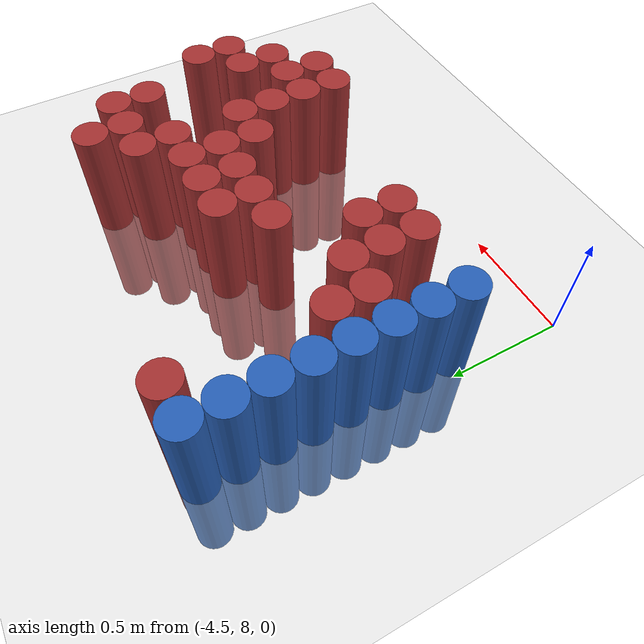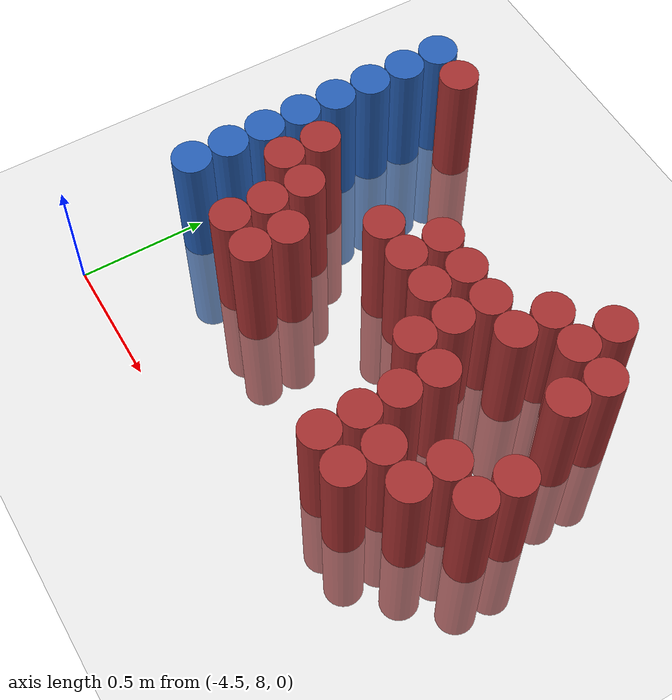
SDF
<sdf version="1.6">
 <world name="default">
  <model name="ground_plane">
   <static>1</static>
   <link name="link">
    <collision name="collision">
     <geometry><plane><normal>0 0 1</normal><size>100 100</size></plane></geometry>
     <surface><friction><ode><mu>100</mu><mu2>50</mu2></ode></friction></surface>
    </collision>
    <visual name="visual">
     <cast_shadows>0</cast_shadows>
     <geometry><plane><normal>0 0 1</normal><size>100 100</size></plane></geometry>
     <material>
      <script><uri>file://media/materials/scripts/gazebo.material</uri><name>Gazebo/Grey</name></script>
     </material>
    </visual>
   </link>
  </model>
  <model name="unit_cylinder_118">
   <static>1</static>
   <pose>-4.425000 8.475000 0.000000 0.000000 0.000000 0.000000</pose>
   <link name="link">
    <inertial>
     <mass>1</mass>
     <inertia><ixx>0.145833</ixx><ixy>0</ixy><ixz>0</ixz><iyy>0.145833</iyy><iyz>0</iyz><izz>0.125</izz></inertia>
    </inertial>
    <collision name="collision">
     <geometry><cylinder><radius>0.075000</radius><length>1</length></cylinder></geometry>
    </collision>
    <visual name="visual">
     <geometry><cylinder><radius>0.075000</radius><length>1</length></cylinder></geometry>
     <material>
      <ambient>0.152000 0.379000 0.720000 1</ambient>
      <diffuse>0.152000 0.379000 0.720000 1</diffuse>
     </material>
     <material>
      <script><name>Gazebo/Grey</name><uri>file://media/materials/scripts/gazebo.material</uri></script>
     </material>
    </visual>
    <sensor name="sensor_contact" type="contact"><contact><collision>collision</collision></contact></sensor>
   </link>
   <plugin filename="gz-sim-touchplugin-system" name="gz::sim::systems::TouchPlugin">
    <target>robot</target>
    <namespace>robot</namespace>
    <time>0.001</time>
    <enabled>true</enabled>
   </plugin>
  </model>
  <model name="unit_cylinder_119">
   <static>1</static>
   <pose>-4.425000 8.625000 0.000000 0.000000 0.000000 0.000000</pose>
   <link name="link">
    <inertial>
     <mass>1</mass>
     <inertia><ixx>0.145833</ixx><ixy>0</ixy><ixz>0</ixz><iyy>0.145833</iyy><iyz>0</iyz><izz>0.125</izz></inertia>
    </inertial>
    <collision name="collision">
     <geometry><cylinder><radius>0.075000</radius><length>1</length></cylinder></geometry>
    </collision>
    <visual name="visual">
     <geometry><cylinder><radius>0.075000</radius><length>1</length></cylinder></geometry>
     <material>
      <ambient>0.152000 0.379000 0.720000 1</ambient>
      <diffuse>0.152000 0.379000 0.720000 1</diffuse>
     </material>
     <material>
      <script><name>Gazebo/Grey</name><uri>file://media/materials/scripts/gazebo.material</uri></script>
     </material>
    </visual>
    <sensor name="sensor_contact" type="contact"><contact><collision>collision</collision></contact></sensor>
   </link>
   <plugin filename="gz-sim-touchplugin-system" name="gz::sim::systems::TouchPlugin">
    <target>robot</target>
    <namespace>robot</namespace>
    <time>0.001</time>
    <enabled>true</enabled>
   </plugin>
  </model>
  <model name="unit_cylinder_120">
   <static>1</static>
   <pose>-4.425000 8.775000 0.000000 0.000000 0.000000 0.000000</pose>
   <link name="link">
    <inertial>
     <mass>1</mass>
     <inertia><ixx>0.145833</ixx><ixy>0</ixy><ixz>0</ixz><iyy>0.145833</iyy><iyz>0</iyz><izz>0.125</izz></inertia>
    </inertial>
    <collision name="collision">
     <geometry><cylinder><radius>0.075000</radius><length>1</length></cylinder></geometry>
    </collision>
    <visual name="visual">
     <geometry><cylinder><radius>0.075000</radius><length>1</length></cylinder></geometry>
     <material>
      <ambient>0.152000 0.379000 0.720000 1</ambient>
      <diffuse>0.152000 0.379000 0.720000 1</diffuse>
     </material>
     <material>
      <script><name>Gazebo/Grey</name><uri>file://media/materials/scripts/gazebo.material</uri></script>
     </material>
    </visual>
    <sensor name="sensor_contact" type="contact"><contact><collision>collision</collision></contact></sensor>
   </link>
   <plugin filename="gz-sim-touchplugin-system" name="gz::sim::systems::TouchPlugin">
    <target>robot</target>
    <namespace>robot</namespace>
    <time>0.001</time>
    <enabled>true</enabled>
   </plugin>
  </model>
  <model name="unit_cylinder_121">
   <static>1</static>
   <pose>-4.425000 8.925000 0.000000 0.000000 0.000000 0.000000</pose>
   <link name="link">
    <inertial>
     <mass>1</mass>
     <inertia><ixx>0.145833</ixx><ixy>0</ixy><ixz>0</ixz><iyy>0.145833</iyy><iyz>0</iyz><izz>0.125</izz></inertia>
    </inertial>
    <collision name="collision">
     <geometry><cylinder><radius>0.075000</radius><length>1</length></cylinder></geometry>
    </collision>
    <visual name="visual">
     <geometry><cylinder><radius>0.075000</radius><length>1</length></cylinder></geometry>
     <material>
      <ambient>0.152000 0.379000 0.720000 1</ambient>
      <diffuse>0.152000 0.379000 0.720000 1</diffuse>
     </material>
     <material>
      <script><name>Gazebo/Grey</name><uri>file://media/materials/scripts/gazebo.material</uri></script>
     </material>
    </visual>
    <sensor name="sensor_contact" type="contact"><contact><collision>collision</collision></contact></sensor>
   </link>
   <plugin filename="gz-sim-touchplugin-system" name="gz::sim::systems::TouchPlugin">
    <target>robot</target>
    <namespace>robot</namespace>
    <time>0.001</time>
    <enabled>true</enabled>
   </plugin>
  </model>
  <model name="unit_cylinder_122">
   <static>1</static>
   <pose>-4.425000 9.075000 0.000000 0.000000 0.000000 0.000000</pose>
   <link name="link">
    <inertial>
     <mass>1</mass>
     <inertia><ixx>0.145833</ixx><ixy>0</ixy><ixz>0</ixz><iyy>0.145833</iyy><iyz>0</iyz><izz>0.125</izz></inertia>
    </inertial>
    <collision name="collision">
     <geometry><cylinder><radius>0.075000</radius><length>1</length></cylinder></geometry>
    </collision>
    <visual name="visual">
     <geometry><cylinder><radius>0.075000</radius><length>1</length></cylinder></geometry>
     <material>
      <ambient>0.152000 0.379000 0.720000 1</ambient>
      <diffuse>0.152000 0.379000 0.720000 1</diffuse>
     </material>
     <material>
      <script><name>Gazebo/Grey</name><uri>file://media/materials/scripts/gazebo.material</uri></script>
     </material>
    </visual>
    <sensor name="sensor_contact" type="contact"><contact><collision>collision</collision></contact></sensor>
   </link>
   <plugin filename="gz-sim-touchplugin-system" name="gz::sim::systems::TouchPlugin">
    <target>robot</target>
    <namespace>robot</namespace>
    <time>0.001</time>
    <enabled>true</enabled>
   </plugin>
  </model>
  <model name="unit_cylinder_123">
   <static>1</static>
   <pose>-4.425000 9.225000 0.000000 0.000000 0.000000 0.000000</pose>
   <link name="link">
    <inertial>
     <mass>1</mass>
     <inertia><ixx>0.145833</ixx><ixy>0</ixy><ixz>0</ixz><iyy>0.145833</iyy><iyz>0</iyz><izz>0.125</izz></inertia>
    </inertial>
    <collision name="collision">
     <geometry><cylinder><radius>0.075000</radius><length>1</length></cylinder></geometry>
    </collision>
    <visual name="visual">
     <geometry><cylinder><radius>0.075000</radius><length>1</length></cylinder></geometry>
     <material>
      <ambient>0.152000 0.379000 0.720000 1</ambient>
      <diffuse>0.152000 0.379000 0.720000 1</diffuse>
     </material>
     <material>
      <script><name>Gazebo/Grey</name><uri>file://media/materials/scripts/gazebo.material</uri></script>
     </material>
    </visual>
    <sensor name="sensor_contact" type="contact"><contact><collision>collision</collision></contact></sensor>
   </link>
   <plugin filename="gz-sim-touchplugin-system" name="gz::sim::systems::TouchPlugin">
    <target>robot</target>
    <namespace>robot</namespace>
    <time>0.001</time>
    <enabled>true</enabled>
   </plugin>
  </model>
  <model name="unit_cylinder_124">
   <static>1</static>
   <pose>-4.425000 9.375000 0.000000 0.000000 0.000000 0.000000</pose>
   <link name="link">
    <inertial>
     <mass>1</mass>
     <inertia><ixx>0.145833</ixx><ixy>0</ixy><ixz>0</ixz><iyy>0.145833</iyy><iyz>0</iyz><izz>0.125</izz></inertia>
    </inertial>
    <collision name="collision">
     <geometry><cylinder><radius>0.075000</radius><length>1</length></cylinder></geometry>
    </collision>
    <visual name="visual">
     <geometry><cylinder><radius>0.075000</radius><length>1</length></cylinder></geometry>
     <material>
      <ambient>0.152000 0.379000 0.720000 1</ambient>
      <diffuse>0.152000 0.379000 0.720000 1</diffuse>
     </material>
     <material>
      <script><name>Gazebo/Grey</name><uri>file://media/materials/scripts/gazebo.material</uri></script>
     </material>
    </visual>
    <sensor name="sensor_contact" type="contact"><contact><collision>collision</collision></contact></sensor>
   </link>
   <plugin filename="gz-sim-touchplugin-system" name="gz::sim::systems::TouchPlugin">
    <target>robot</target>
    <namespace>robot</namespace>
    <time>0.001</time>
    <enabled>true</enabled>
   </plugin>
  </model>
  <model name="unit_cylinder_125">
   <static>1</static>
   <pose>-4.425000 9.525000 0.000000 0.000000 0.000000 0.000000</pose>
   <link name="link">
    <inertial>
     <mass>1</mass>
     <inertia><ixx>0.145833</ixx><ixy>0</ixy><ixz>0</ixz><iyy>0.145833</iyy><iyz>0</iyz><izz>0.125</izz></inertia>
    </inertial>
    <collision name="collision">
     <geometry><cylinder><radius>0.075000</radius><length>1</length></cylinder></geometry>
    </collision>
    <visual name="visual">
     <geometry><cylinder><radius>0.075000</radius><length>1</length></cylinder></geometry>
     <material>
      <ambient>0.152000 0.379000 0.720000 1</ambient>
      <diffuse>0.152000 0.379000 0.720000 1</diffuse>
     </material>
     <material>
      <script><name>Gazebo/Grey</name><uri>file://media/materials/scripts/gazebo.material</uri></script>
     </material>
    </visual>
    <sensor name="sensor_contact" type="contact"><contact><collision>collision</collision></contact></sensor>
   </link>
   <plugin filename="gz-sim-touchplugin-system" name="gz::sim::systems::TouchPlugin">
    <target>robot</target>
    <namespace>robot</namespace>
    <time>0.001</time>
    <enabled>true</enabled>
   </plugin>
  </model>
  <model name="unit_cylinder_133">
   <static>1</static>
   <pose>-4.275000 8.775000 0.000000 0.000000 0.000000 0.000000</pose>
   <link name="link">
    <inertial>
     <mass>1</mass>
     <inertia><ixx>0.145833</ixx><ixy>0</ixy><ixz>0</ixz><iyy>0.145833</iyy><iyz>0</iyz><izz>0.125</izz></inertia>
    </inertial>
    <collision name="collision">
     <geometry><cylinder><radius>0.075000</radius><length>1</length></cylinder></geometry>
    </collision>
    <visual name="visual">
     <geometry><cylinder><radius>0.075000</radius><length>1</length></cylinder></geometry>
     <material>
      <ambient>0.648000 0.192000 0.192000 1</ambient>
      <diffuse>0.648000 0.192000 0.192000 1</diffuse>
     </material>
     <material>
      <script><name>Gazebo/Grey</name><uri>file://media/materials/scripts/gazebo.material</uri></script>
     </material>
    </visual>
    <sensor name="sensor_contact" type="contact"><contact><collision>collision</collision></contact></sensor>
   </link>
   <plugin filename="gz-sim-touchplugin-system" name="gz::sim::systems::TouchPlugin">
    <target>robot</target>
    <namespace>robot</namespace>
    <time>0.001</time>
    <enabled>true</enabled>
   </plugin>
  </model>
  <model name="unit_cylinder_134">
   <static>1</static>
   <pose>-4.275000 8.925000 0.000000 0.000000 0.000000 0.000000</pose>
   <link name="link">
    <inertial>
     <mass>1</mass>
     <inertia><ixx>0.145833</ixx><ixy>0</ixy><ixz>0</ixz><iyy>0.145833</iyy><iyz>0</iyz><izz>0.125</izz></inertia>
    </inertial>
    <collision name="collision">
     <geometry><cylinder><radius>0.075000</radius><length>1</length></cylinder></geometry>
    </collision>
    <visual name="visual">
     <geometry><cylinder><radius>0.075000</radius><length>1</length></cylinder></geometry>
     <material>
      <ambient>0.648000 0.192000 0.192000 1</ambient>
      <diffuse>0.648000 0.192000 0.192000 1</diffuse>
     </material>
     <material>
      <script><name>Gazebo/Grey</name><uri>file://media/materials/scripts/gazebo.material</uri></script>
     </material>
    </visual>
    <sensor name="sensor_contact" type="contact"><contact><collision>collision</collision></contact></sensor>
   </link>
   <plugin filename="gz-sim-touchplugin-system" name="gz::sim::systems::TouchPlugin">
    <target>robot</target>
    <namespace>robot</namespace>
    <time>0.001</time>
    <enabled>true</enabled>
   </plugin>
  </model>
  <model name="unit_cylinder_135">
   <static>1</static>
   <pose>-4.275000 9.525000 0.000000 0.000000 0.000000 0.000000</pose>
   <link name="link">
    <inertial>
     <mass>1</mass>
     <inertia><ixx>0.145833</ixx><ixy>0</ixy><ixz>0</ixz><iyy>0.145833</iyy><iyz>0</iyz><izz>0.125</izz></inertia>
    </inertial>
    <collision name="collision">
     <geometry><cylinder><radius>0.075000</radius><length>1</length></cylinder></geometry>
    </collision>
    <visual name="visual">
     <geometry><cylinder><radius>0.075000</radius><length>1</length></cylinder></geometry>
     <material>
      <ambient>0.648000 0.192000 0.192000 1</ambient>
      <diffuse>0.648000 0.192000 0.192000 1</diffuse>
     </material>
     <material>
      <script><name>Gazebo/Grey</name><uri>file://media/materials/scripts/gazebo.material</uri></script>
     </material>
    </visual>
    <sensor name="sensor_contact" type="contact"><contact><collision>collision</collision></contact></sensor>
   </link>
   <plugin filename="gz-sim-touchplugin-system" name="gz::sim::systems::TouchPlugin">
    <target>robot</target>
    <namespace>robot</namespace>
    <time>0.001</time>
    <enabled>true</enabled>
   </plugin>
  </model>
  <model name="unit_cylinder_144">
   <static>1</static>
   <pose>-4.125000 8.475000 0.000000 0.000000 0.000000 0.000000</pose>
   <link name="link">
    <inertial>
     <mass>1</mass>
     <inertia><ixx>0.145833</ixx><ixy>0</ixy><ixz>0</ixz><iyy>0.145833</iyy><iyz>0</iyz><izz>0.125</izz></inertia>
    </inertial>
    <collision name="collision">
     <geometry><cylinder><radius>0.075000</radius><length>1</length></cylinder></geometry>
    </collision>
    <visual name="visual">
     <geometry><cylinder><radius>0.075000</radius><length>1</length></cylinder></geometry>
     <material>
      <ambient>0.648000 0.192000 0.192000 1</ambient>
      <diffuse>0.648000 0.192000 0.192000 1</diffuse>
     </material>
     <material>
      <script><name>Gazebo/Grey</name><uri>file://media/materials/scripts/gazebo.material</uri></script>
     </material>
    </visual>
    <sensor name="sensor_contact" type="contact"><contact><collision>collision</collision></contact></sensor>
   </link>
   <plugin filename="gz-sim-touchplugin-system" name="gz::sim::systems::TouchPlugin">
    <target>robot</target>
    <namespace>robot</namespace>
    <time>0.001</time>
    <enabled>true</enabled>
   </plugin>
  </model>
  <model name="unit_cylinder_145">
   <static>1</static>
   <pose>-4.125000 8.625000 0.000000 0.000000 0.000000 0.000000</pose>
   <link name="link">
    <inertial>
     <mass>1</mass>
     <inertia><ixx>0.145833</ixx><ixy>0</ixy><ixz>0</ixz><iyy>0.145833</iyy><iyz>0</iyz><izz>0.125</izz></inertia>
    </inertial>
    <collision name="collision">
     <geometry><cylinder><radius>0.075000</radius><length>1</length></cylinder></geometry>
    </collision>
    <visual name="visual">
     <geometry><cylinder><radius>0.075000</radius><length>1</length></cylinder></geometry>
     <material>
      <ambient>0.648000 0.192000 0.192000 1</ambient>
      <diffuse>0.648000 0.192000 0.192000 1</diffuse>
     </material>
     <material>
      <script><name>Gazebo/Grey</name><uri>file://media/materials/scripts/gazebo.material</uri></script>
     </material>
    </visual>
    <sensor name="sensor_contact" type="contact"><contact><collision>collision</collision></contact></sensor>
   </link>
   <plugin filename="gz-sim-touchplugin-system" name="gz::sim::systems::TouchPlugin">
    <target>robot</target>
    <namespace>robot</namespace>
    <time>0.001</time>
    <enabled>true</enabled>
   </plugin>
  </model>
  <model name="unit_cylinder_146">
   <static>1</static>
   <pose>-4.125000 8.775000 0.000000 0.000000 0.000000 0.000000</pose>
   <link name="link">
    <inertial>
     <mass>1</mass>
     <inertia><ixx>0.145833</ixx><ixy>0</ixy><ixz>0</ixz><iyy>0.145833</iyy><iyz>0</iyz><izz>0.125</izz></inertia>
    </inertial>
    <collision name="collision">
     <geometry><cylinder><radius>0.075000</radius><length>1</length></cylinder></geometry>
    </collision>
    <visual name="visual">
     <geometry><cylinder><radius>0.075000</radius><length>1</length></cylinder></geometry>
     <material>
      <ambient>0.648000 0.192000 0.192000 1</ambient>
      <diffuse>0.648000 0.192000 0.192000 1</diffuse>
     </material>
     <material>
      <script><name>Gazebo/Grey</name><uri>file://media/materials/scripts/gazebo.material</uri></script>
     </material>
    </visual>
    <sensor name="sensor_contact" type="contact"><contact><collision>collision</collision></contact></sensor>
   </link>
   <plugin filename="gz-sim-touchplugin-system" name="gz::sim::systems::TouchPlugin">
    <target>robot</target>
    <namespace>robot</namespace>
    <time>0.001</time>
    <enabled>true</enabled>
   </plugin>
  </model>
  <model name="unit_cylinder_156">
   <static>1</static>
   <pose>-3.975000 8.475000 0.000000 0.000000 0.000000 0.000000</pose>
   <link name="link">
    <inertial>
     <mass>1</mass>
     <inertia><ixx>0.145833</ixx><ixy>0</ixy><ixz>0</ixz><iyy>0.145833</iyy><iyz>0</iyz><izz>0.125</izz></inertia>
    </inertial>
    <collision name="collision">
     <geometry><cylinder><radius>0.075000</radius><length>1</length></cylinder></geometry>
    </collision>
    <visual name="visual">
     <geometry><cylinder><radius>0.075000</radius><length>1</length></cylinder></geometry>
     <material>
      <ambient>0.648000 0.192000 0.192000 1</ambient>
      <diffuse>0.648000 0.192000 0.192000 1</diffuse>
     </material>
     <material>
      <script><name>Gazebo/Grey</name><uri>file://media/materials/scripts/gazebo.material</uri></script>
     </material>
    </visual>
    <sensor name="sensor_contact" type="contact"><contact><collision>collision</collision></contact></sensor>
   </link>
   <plugin filename="gz-sim-touchplugin-system" name="gz::sim::systems::TouchPlugin">
    <target>robot</target>
    <namespace>robot</namespace>
    <time>0.001</time>
    <enabled>true</enabled>
   </plugin>
  </model>
  <model name="unit_cylinder_157">
   <static>1</static>
   <pose>-3.975000 8.625000 0.000000 0.000000 0.000000 0.000000</pose>
   <link name="link">
    <inertial>
     <mass>1</mass>
     <inertia><ixx>0.145833</ixx><ixy>0</ixy><ixz>0</ixz><iyy>0.145833</iyy><iyz>0</iyz><izz>0.125</izz></inertia>
    </inertial>
    <collision name="collision">
     <geometry><cylinder><radius>0.075000</radius><length>1</length></cylinder></geometry>
    </collision>
    <visual name="visual">
     <geometry><cylinder><radius>0.075000</radius><length>1</length></cylinder></geometry>
     <material>
      <ambient>0.648000 0.192000 0.192000 1</ambient>
      <diffuse>0.648000 0.192000 0.192000 1</diffuse>
     </material>
     <material>
      <script><name>Gazebo/Grey</name><uri>file://media/materials/scripts/gazebo.material</uri></script>
     </material>
    </visual>
    <sensor name="sensor_contact" type="contact"><contact><collision>collision</collision></contact></sensor>
   </link>
   <plugin filename="gz-sim-touchplugin-system" name="gz::sim::systems::TouchPlugin">
    <target>robot</target>
    <namespace>robot</namespace>
    <time>0.001</time>
    <enabled>true</enabled>
   </plugin>
  </model>
  <model name="unit_cylinder_162">
   <static>1</static>
   <pose>-3.825000 8.925000 0.000000 0.000000 0.000000 0.000000</pose>
   <link name="link">
    <inertial>
     <mass>1</mass>
     <inertia><ixx>0.145833</ixx><ixy>0</ixy><ixz>0</ixz><iyy>0.145833</iyy><iyz>0</iyz><izz>0.125</izz></inertia>
    </inertial>
    <collision name="collision">
     <geometry><cylinder><radius>0.075000</radius><length>1</length></cylinder></geometry>
    </collision>
    <visual name="visual">
     <geometry><cylinder><radius>0.075000</radius><length>1</length></cylinder></geometry>
     <material>
      <ambient>0.648000 0.192000 0.192000 1</ambient>
      <diffuse>0.648000 0.192000 0.192000 1</diffuse>
     </material>
     <material>
      <script><name>Gazebo/Grey</name><uri>file://media/materials/scripts/gazebo.material</uri></script>
     </material>
    </visual>
    <sensor name="sensor_contact" type="contact"><contact><collision>collision</collision></contact></sensor>
   </link>
   <plugin filename="gz-sim-touchplugin-system" name="gz::sim::systems::TouchPlugin">
    <target>robot</target>
    <namespace>robot</namespace>
    <time>0.001</time>
    <enabled>true</enabled>
   </plugin>
  </model>
  <model name="unit_cylinder_167">
   <static>1</static>
   <pose>-3.675000 8.925000 0.000000 0.000000 0.000000 0.000000</pose>
   <link name="link">
    <inertial>
     <mass>1</mass>
     <inertia><ixx>0.145833</ixx><ixy>0</ixy><ixz>0</ixz><iyy>0.145833</iyy><iyz>0</iyz><izz>0.125</izz></inertia>
    </inertial>
    <collision name="collision">
     <geometry><cylinder><radius>0.075000</radius><length>1</length></cylinder></geometry>
    </collision>
    <visual name="visual">
     <geometry><cylinder><radius>0.075000</radius><length>1</length></cylinder></geometry>
     <material>
      <ambient>0.648000 0.192000 0.192000 1</ambient>
      <diffuse>0.648000 0.192000 0.192000 1</diffuse>
     </material>
     <material>
      <script><name>Gazebo/Grey</name><uri>file://media/materials/scripts/gazebo.material</uri></script>
     </material>
    </visual>
    <sensor name="sensor_contact" type="contact"><contact><collision>collision</collision></contact></sensor>
   </link>
   <plugin filename="gz-sim-touchplugin-system" name="gz::sim::systems::TouchPlugin">
    <target>robot</target>
    <namespace>robot</namespace>
    <time>0.001</time>
    <enabled>true</enabled>
   </plugin>
  </model>
  <model name="unit_cylinder_168">
   <static>1</static>
   <pose>-3.675000 9.075000 0.000000 0.000000 0.000000 0.000000</pose>
   <link name="link">
    <inertial>
     <mass>1</mass>
     <inertia><ixx>0.145833</ixx><ixy>0</ixy><ixz>0</ixz><iyy>0.145833</iyy><iyz>0</iyz><izz>0.125</izz></inertia>
    </inertial>
    <collision name="collision">
     <geometry><cylinder><radius>0.075000</radius><length>1</length></cylinder></geometry>
    </collision>
    <visual name="visual">
     <geometry><cylinder><radius>0.075000</radius><length>1</length></cylinder></geometry>
     <material>
      <ambient>0.648000 0.192000 0.192000 1</ambient>
      <diffuse>0.648000 0.192000 0.192000 1</diffuse>
     </material>
     <material>
      <script><name>Gazebo/Grey</name><uri>file://media/materials/scripts/gazebo.material</uri></script>
     </material>
    </visual>
    <sensor name="sensor_contact" type="contact"><contact><collision>collision</collision></contact></sensor>
   </link>
   <plugin filename="gz-sim-touchplugin-system" name="gz::sim::systems::TouchPlugin">
    <target>robot</target>
    <namespace>robot</namespace>
    <time>0.001</time>
    <enabled>true</enabled>
   </plugin>
  </model>
  <model name="unit_cylinder_173">
   <static>1</static>
   <pose>-3.525000 8.925000 0.000000 0.000000 0.000000 0.000000</pose>
   <link name="link">
    <inertial>
     <mass>1</mass>
     <inertia><ixx>0.145833</ixx><ixy>0</ixy><ixz>0</ixz><iyy>0.145833</iyy><iyz>0</iyz><izz>0.125</izz></inertia>
    </inertial>
    <collision name="collision">
     <geometry><cylinder><radius>0.075000</radius><length>1</length></cylinder></geometry>
    </collision>
    <visual name="visual">
     <geometry><cylinder><radius>0.075000</radius><length>1</length></cylinder></geometry>
     <material>
      <ambient>0.648000 0.192000 0.192000 1</ambient>
      <diffuse>0.648000 0.192000 0.192000 1</diffuse>
     </material>
     <material>
      <script><name>Gazebo/Grey</name><uri>file://media/materials/scripts/gazebo.material</uri></script>
     </material>
    </visual>
    <sensor name="sensor_contact" type="contact"><contact><collision>collision</collision></contact></sensor>
   </link>
   <plugin filename="gz-sim-touchplugin-system" name="gz::sim::systems::TouchPlugin">
    <target>robot</target>
    <namespace>robot</namespace>
    <time>0.001</time>
    <enabled>true</enabled>
   </plugin>
  </model>
  <model name="unit_cylinder_174">
   <static>1</static>
   <pose>-3.525000 9.075000 0.000000 0.000000 0.000000 0.000000</pose>
   <link name="link">
    <inertial>
     <mass>1</mass>
     <inertia><ixx>0.145833</ixx><ixy>0</ixy><ixz>0</ixz><iyy>0.145833</iyy><iyz>0</iyz><izz>0.125</izz></inertia>
    </inertial>
    <collision name="collision">
     <geometry><cylinder><radius>0.075000</radius><length>1</length></cylinder></geometry>
    </collision>
    <visual name="visual">
     <geometry><cylinder><radius>0.075000</radius><length>1</length></cylinder></geometry>
     <material>
      <ambient>0.648000 0.192000 0.192000 1</ambient>
      <diffuse>0.648000 0.192000 0.192000 1</diffuse>
     </material>
     <material>
      <script><name>Gazebo/Grey</name><uri>file://media/materials/scripts/gazebo.material</uri></script>
     </material>
    </visual>
    <sensor name="sensor_contact" type="contact"><contact><collision>collision</collision></contact></sensor>
   </link>
   <plugin filename="gz-sim-touchplugin-system" name="gz::sim::systems::TouchPlugin">
    <target>robot</target>
    <namespace>robot</namespace>
    <time>0.001</time>
    <enabled>true</enabled>
   </plugin>
  </model>
  <model name="unit_cylinder_179">
   <static>1</static>
   <pose>-3.375000 8.775000 0.000000 0.000000 0.000000 0.000000</pose>
   <link name="link">
    <inertial>
     <mass>1</mass>
     <inertia><ixx>0.145833</ixx><ixy>0</ixy><ixz>0</ixz><iyy>0.145833</iyy><iyz>0</iyz><izz>0.125</izz></inertia>
    </inertial>
    <collision name="collision">
     <geometry><cylinder><radius>0.075000</radius><length>1</length></cylinder></geometry>
    </collision>
    <visual name="visual">
     <geometry><cylinder><radius>0.075000</radius><length>1</length></cylinder></geometry>
     <material>
      <ambient>0.648000 0.192000 0.192000 1</ambient>
      <diffuse>0.648000 0.192000 0.192000 1</diffuse>
     </material>
     <material>
      <script><name>Gazebo/Grey</name><uri>file://media/materials/scripts/gazebo.material</uri></script>
     </material>
    </visual>
    <sensor name="sensor_contact" type="contact"><contact><collision>collision</collision></contact></sensor>
   </link>
   <plugin filename="gz-sim-touchplugin-system" name="gz::sim::systems::TouchPlugin">
    <target>robot</target>
    <namespace>robot</namespace>
    <time>0.001</time>
    <enabled>true</enabled>
   </plugin>
  </model>
  <model name="unit_cylinder_180">
   <static>1</static>
   <pose>-3.375000 8.925000 0.000000 0.000000 0.000000 0.000000</pose>
   <link name="link">
    <inertial>
     <mass>1</mass>
     <inertia><ixx>0.145833</ixx><ixy>0</ixy><ixz>0</ixz><iyy>0.145833</iyy><iyz>0</iyz><izz>0.125</izz></inertia>
    </inertial>
    <collision name="collision">
     <geometry><cylinder><radius>0.075000</radius><length>1</length></cylinder></geometry>
    </collision>
    <visual name="visual">
     <geometry><cylinder><radius>0.075000</radius><length>1</length></cylinder></geometry>
     <material>
      <ambient>0.648000 0.192000 0.192000 1</ambient>
      <diffuse>0.648000 0.192000 0.192000 1</diffuse>
     </material>
     <material>
      <script><name>Gazebo/Grey</name><uri>file://media/materials/scripts/gazebo.material</uri></script>
     </material>
    </visual>
    <sensor name="sensor_contact" type="contact"><contact><collision>collision</collision></contact></sensor>
   </link>
   <plugin filename="gz-sim-touchplugin-system" name="gz::sim::systems::TouchPlugin">
    <target>robot</target>
    <namespace>robot</namespace>
    <time>0.001</time>
    <enabled>true</enabled>
   </plugin>
  </model>
  <model name="unit_cylinder_181">
   <static>1</static>
   <pose>-3.375000 9.075000 0.000000 0.000000 0.000000 0.000000</pose>
   <link name="link">
    <inertial>
     <mass>1</mass>
     <inertia><ixx>0.145833</ixx><ixy>0</ixy><ixz>0</ixz><iyy>0.145833</iyy><iyz>0</iyz><izz>0.125</izz></inertia>
    </inertial>
    <collision name="collision">
     <geometry><cylinder><radius>0.075000</radius><length>1</length></cylinder></geometry>
    </collision>
    <visual name="visual">
     <geometry><cylinder><radius>0.075000</radius><length>1</length></cylinder></geometry>
     <material>
      <ambient>0.648000 0.192000 0.192000 1</ambient>
      <diffuse>0.648000 0.192000 0.192000 1</diffuse>
     </material>
     <material>
      <script><name>Gazebo/Grey</name><uri>file://media/materials/scripts/gazebo.material</uri></script>
     </material>
    </visual>
    <sensor name="sensor_contact" type="contact"><contact><collision>collision</collision></contact></sensor>
   </link>
   <plugin filename="gz-sim-touchplugin-system" name="gz::sim::systems::TouchPlugin">
    <target>robot</target>
    <namespace>robot</namespace>
    <time>0.001</time>
    <enabled>true</enabled>
   </plugin>
  </model>
  <model name="unit_cylinder_186">
   <static>1</static>
   <pose>-3.225000 8.325000 0.000000 0.000000 0.000000 0.000000</pose>
   <link name="link">
    <inertial>
     <mass>1</mass>
     <inertia><ixx>0.145833</ixx><ixy>0</ixy><ixz>0</ixz><iyy>0.145833</iyy><iyz>0</iyz><izz>0.125</izz></inertia>
    </inertial>
    <collision name="collision">
     <geometry><cylinder><radius>0.075000</radius><length>1</length></cylinder></geometry>
    </collision>
    <visual name="visual">
     <geometry><cylinder><radius>0.075000</radius><length>1</length></cylinder></geometry>
     <material>
      <ambient>0.648000 0.192000 0.192000 1</ambient>
      <diffuse>0.648000 0.192000 0.192000 1</diffuse>
     </material>
     <material>
      <script><name>Gazebo/Grey</name><uri>file://media/materials/scripts/gazebo.material</uri></script>
     </material>
    </visual>
    <sensor name="sensor_contact" type="contact"><contact><collision>collision</collision></contact></sensor>
   </link>
   <plugin filename="gz-sim-touchplugin-system" name="gz::sim::systems::TouchPlugin">
    <target>robot</target>
    <namespace>robot</namespace>
    <time>0.001</time>
    <enabled>true</enabled>
   </plugin>
  </model>
  <model name="unit_cylinder_187">
   <static>1</static>
   <pose>-3.225000 8.475000 0.000000 0.000000 0.000000 0.000000</pose>
   <link name="link">
    <inertial>
     <mass>1</mass>
     <inertia><ixx>0.145833</ixx><ixy>0</ixy><ixz>0</ixz><iyy>0.145833</iyy><iyz>0</iyz><izz>0.125</izz></inertia>
    </inertial>
    <collision name="collision">
     <geometry><cylinder><radius>0.075000</radius><length>1</length></cylinder></geometry>
    </collision>
    <visual name="visual">
     <geometry><cylinder><radius>0.075000</radius><length>1</length></cylinder></geometry>
     <material>
      <ambient>0.648000 0.192000 0.192000 1</ambient>
      <diffuse>0.648000 0.192000 0.192000 1</diffuse>
     </material>
     <material>
      <script><name>Gazebo/Grey</name><uri>file://media/materials/scripts/gazebo.material</uri></script>
     </material>
    </visual>
    <sensor name="sensor_contact" type="contact"><contact><collision>collision</collision></contact></sensor>
   </link>
   <plugin filename="gz-sim-touchplugin-system" name="gz::sim::systems::TouchPlugin">
    <target>robot</target>
    <namespace>robot</namespace>
    <time>0.001</time>
    <enabled>true</enabled>
   </plugin>
  </model>
  <model name="unit_cylinder_188">
   <static>1</static>
   <pose>-3.225000 8.625000 0.000000 0.000000 0.000000 0.000000</pose>
   <link name="link">
    <inertial>
     <mass>1</mass>
     <inertia><ixx>0.145833</ixx><ixy>0</ixy><ixz>0</ixz><iyy>0.145833</iyy><iyz>0</iyz><izz>0.125</izz></inertia>
    </inertial>
    <collision name="collision">
     <geometry><cylinder><radius>0.075000</radius><length>1</length></cylinder></geometry>
    </collision>
    <visual name="visual">
     <geometry><cylinder><radius>0.075000</radius><length>1</length></cylinder></geometry>
     <material>
      <ambient>0.648000 0.192000 0.192000 1</ambient>
      <diffuse>0.648000 0.192000 0.192000 1</diffuse>
     </material>
     <material>
      <script><name>Gazebo/Grey</name><uri>file://media/materials/scripts/gazebo.material</uri></script>
     </material>
    </visual>
    <sensor name="sensor_contact" type="contact"><contact><collision>collision</collision></contact></sensor>
   </link>
   <plugin filename="gz-sim-touchplugin-system" name="gz::sim::systems::TouchPlugin">
    <target>robot</target>
    <namespace>robot</namespace>
    <time>0.001</time>
    <enabled>true</enabled>
   </plugin>
  </model>
  <model name="unit_cylinder_189">
   <static>1</static>
   <pose>-3.225000 8.775000 0.000000 0.000000 0.000000 0.000000</pose>
   <link name="link">
    <inertial>
     <mass>1</mass>
     <inertia><ixx>0.145833</ixx><ixy>0</ixy><ixz>0</ixz><iyy>0.145833</iyy><iyz>0</iyz><izz>0.125</izz></inertia>
    </inertial>
    <collision name="collision">
     <geometry><cylinder><radius>0.075000</radius><length>1</length></cylinder></geometry>
    </collision>
    <visual name="visual">
     <geometry><cylinder><radius>0.075000</radius><length>1</length></cylinder></geometry>
     <material>
      <ambient>0.648000 0.192000 0.192000 1</ambient>
      <diffuse>0.648000 0.192000 0.192000 1</diffuse>
     </material>
     <material>
      <script><name>Gazebo/Grey</name><uri>file://media/materials/scripts/gazebo.material</uri></script>
     </material>
    </visual>
    <sensor name="sensor_contact" type="contact"><contact><collision>collision</collision></contact></sensor>
   </link>
   <plugin filename="gz-sim-touchplugin-system" name="gz::sim::systems::TouchPlugin">
    <target>robot</target>
    <namespace>robot</namespace>
    <time>0.001</time>
    <enabled>true</enabled>
   </plugin>
  </model>
  <model name="unit_cylinder_190">
   <static>1</static>
   <pose>-3.225000 9.075000 0.000000 0.000000 0.000000 0.000000</pose>
   <link name="link">
    <inertial>
     <mass>1</mass>
     <inertia><ixx>0.145833</ixx><ixy>0</ixy><ixz>0</ixz><iyy>0.145833</iyy><iyz>0</iyz><izz>0.125</izz></inertia>
    </inertial>
    <collision name="collision">
     <geometry><cylinder><radius>0.075000</radius><length>1</length></cylinder></geometry>
    </collision>
    <visual name="visual">
     <geometry><cylinder><radius>0.075000</radius><length>1</length></cylinder></geometry>
     <material>
      <ambient>0.648000 0.192000 0.192000 1</ambient>
      <diffuse>0.648000 0.192000 0.192000 1</diffuse>
     </material>
     <material>
      <script><name>Gazebo/Grey</name><uri>file://media/materials/scripts/gazebo.material</uri></script>
     </material>
    </visual>
    <sensor name="sensor_contact" type="contact"><contact><collision>collision</collision></contact></sensor>
   </link>
   <plugin filename="gz-sim-touchplugin-system" name="gz::sim::systems::TouchPlugin">
    <target>robot</target>
    <namespace>robot</namespace>
    <time>0.001</time>
    <enabled>true</enabled>
   </plugin>
  </model>
  <model name="unit_cylinder_191">
   <static>1</static>
   <pose>-3.225000 9.225000 0.000000 0.000000 0.000000 0.000000</pose>
   <link name="link">
    <inertial>
     <mass>1</mass>
     <inertia><ixx>0.145833</ixx><ixy>0</ixy><ixz>0</ixz><iyy>0.145833</iyy><iyz>0</iyz><izz>0.125</izz></inertia>
    </inertial>
    <collision name="collision">
     <geometry><cylinder><radius>0.075000</radius><length>1</length></cylinder></geometry>
    </collision>
    <visual name="visual">
     <geometry><cylinder><radius>0.075000</radius><length>1</length></cylinder></geometry>
     <material>
      <ambient>0.648000 0.192000 0.192000 1</ambient>
      <diffuse>0.648000 0.192000 0.192000 1</diffuse>
     </material>
     <material>
      <script><name>Gazebo/Grey</name><uri>file://media/materials/scripts/gazebo.material</uri></script>
     </material>
    </visual>
    <sensor name="sensor_contact" type="contact"><contact><collision>collision</collision></contact></sensor>
   </link>
   <plugin filename="gz-sim-touchplugin-system" name="gz::sim::systems::TouchPlugin">
    <target>robot</target>
    <namespace>robot</namespace>
    <time>0.001</time>
    <enabled>true</enabled>
   </plugin>
  </model>
  <model name="unit_cylinder_196">
   <static>1</static>
   <pose>-3.075000 8.325000 0.000000 0.000000 0.000000 0.000000</pose>
   <link name="link">
    <inertial>
     <mass>1</mass>
     <inertia><ixx>0.145833</ixx><ixy>0</ixy><ixz>0</ixz><iyy>0.145833</iyy><iyz>0</iyz><izz>0.125</izz></inertia>
    </inertial>
    <collision name="collision">
     <geometry><cylinder><radius>0.075000</radius><length>1</length></cylinder></geometry>
    </collision>
    <visual name="visual">
     <geometry><cylinder><radius>0.075000</radius><length>1</length></cylinder></geometry>
     <material>
      <ambient>0.648000 0.192000 0.192000 1</ambient>
      <diffuse>0.648000 0.192000 0.192000 1</diffuse>
     </material>
     <material>
      <script><name>Gazebo/Grey</name><uri>file://media/materials/scripts/gazebo.material</uri></script>
     </material>
    </visual>
    <sensor name="sensor_contact" type="contact"><contact><collision>collision</collision></contact></sensor>
   </link>
   <plugin filename="gz-sim-touchplugin-system" name="gz::sim::systems::TouchPlugin">
    <target>robot</target>
    <namespace>robot</namespace>
    <time>0.001</time>
    <enabled>true</enabled>
   </plugin>
  </model>
  <model name="unit_cylinder_197">
   <static>1</static>
   <pose>-3.075000 8.475000 0.000000 0.000000 0.000000 0.000000</pose>
   <link name="link">
    <inertial>
     <mass>1</mass>
     <inertia><ixx>0.145833</ixx><ixy>0</ixy><ixz>0</ixz><iyy>0.145833</iyy><iyz>0</iyz><izz>0.125</izz></inertia>
    </inertial>
    <collision name="collision">
     <geometry><cylinder><radius>0.075000</radius><length>1</length></cylinder></geometry>
    </collision>
    <visual name="visual">
     <geometry><cylinder><radius>0.075000</radius><length>1</length></cylinder></geometry>
     <material>
      <ambient>0.648000 0.192000 0.192000 1</ambient>
      <diffuse>0.648000 0.192000 0.192000 1</diffuse>
     </material>
     <material>
      <script><name>Gazebo/Grey</name><uri>file://media/materials/scripts/gazebo.material</uri></script>
     </material>
    </visual>
    <sensor name="sensor_contact" type="contact"><contact><collision>collision</collision></contact></sensor>
   </link>
   <plugin filename="gz-sim-touchplugin-system" name="gz::sim::systems::TouchPlugin">
    <target>robot</target>
    <namespace>robot</namespace>
    <time>0.001</time>
    <enabled>true</enabled>
   </plugin>
  </model>
  <model name="unit_cylinder_198">
   <static>1</static>
   <pose>-3.075000 9.225000 0.000000 0.000000 0.000000 0.000000</pose>
   <link name="link">
    <inertial>
     <mass>1</mass>
     <inertia><ixx>0.145833</ixx><ixy>0</ixy><ixz>0</ixz><iyy>0.145833</iyy><iyz>0</iyz><izz>0.125</izz></inertia>
    </inertial>
    <collision name="collision">
     <geometry><cylinder><radius>0.075000</radius><length>1</length></cylinder></geometry>
    </collision>
    <visual name="visual">
     <geometry><cylinder><radius>0.075000</radius><length>1</length></cylinder></geometry>
     <material>
      <ambient>0.648000 0.192000 0.192000 1</ambient>
      <diffuse>0.648000 0.192000 0.192000 1</diffuse>
     </material>
     <material>
      <script><name>Gazebo/Grey</name><uri>file://media/materials/scripts/gazebo.material</uri></script>
     </material>
    </visual>
    <sensor name="sensor_contact" type="contact"><contact><collision>collision</collision></contact></sensor>
   </link>
   <plugin filename="gz-sim-touchplugin-system" name="gz::sim::systems::TouchPlugin">
    <target>robot</target>
    <namespace>robot</namespace>
    <time>0.001</time>
    <enabled>true</enabled>
   </plugin>
  </model>
  <model name="unit_cylinder_199">
   <static>1</static>
   <pose>-3.075000 9.375000 0.000000 0.000000 0.000000 0.000000</pose>
   <link name="link">
    <inertial>
     <mass>1</mass>
     <inertia><ixx>0.145833</ixx><ixy>0</ixy><ixz>0</ixz><iyy>0.145833</iyy><iyz>0</iyz><izz>0.125</izz></inertia>
    </inertial>
    <collision name="collision">
     <geometry><cylinder><radius>0.075000</radius><length>1</length></cylinder></geometry>
    </collision>
    <visual name="visual">
     <geometry><cylinder><radius>0.075000</radius><length>1</length></cylinder></geometry>
     <material>
      <ambient>0.648000 0.192000 0.192000 1</ambient>
      <diffuse>0.648000 0.192000 0.192000 1</diffuse>
     </material>
     <material>
      <script><name>Gazebo/Grey</name><uri>file://media/materials/scripts/gazebo.material</uri></script>
     </material>
    </visual>
    <sensor name="sensor_contact" type="contact"><contact><collision>collision</collision></contact></sensor>
   </link>
   <plugin filename="gz-sim-touchplugin-system" name="gz::sim::systems::TouchPlugin">
    <target>robot</target>
    <namespace>robot</namespace>
    <time>0.001</time>
    <enabled>true</enabled>
   </plugin>
  </model>
  <model name="unit_cylinder_201">
   <static>1</static>
   <pose>-2.925000 8.475000 0.000000 0.000000 0.000000 0.000000</pose>
   <link name="link">
    <inertial>
     <mass>1</mass>
     <inertia><ixx>0.145833</ixx><ixy>0</ixy><ixz>0</ixz><iyy>0.145833</iyy><iyz>0</iyz><izz>0.125</izz></inertia>
    </inertial>
    <collision name="collision">
     <geometry><cylinder><radius>0.075000</radius><length>1</length></cylinder></geometry>
    </collision>
    <visual name="visual">
     <geometry><cylinder><radius>0.075000</radius><length>1</length></cylinder></geometry>
     <material>
      <ambient>0.648000 0.192000 0.192000 1</ambient>
      <diffuse>0.648000 0.192000 0.192000 1</diffuse>
     </material>
     <material>
      <script><name>Gazebo/Grey</name><uri>file://media/materials/scripts/gazebo.material</uri></script>
     </material>
    </visual>
    <sensor name="sensor_contact" type="contact"><contact><collision>collision</collision></contact></sensor>
   </link>
   <plugin filename="gz-sim-touchplugin-system" name="gz::sim::systems::TouchPlugin">
    <target>robot</target>
    <namespace>robot</namespace>
    <time>0.001</time>
    <enabled>true</enabled>
   </plugin>
  </model>
  <model name="unit_cylinder_202">
   <static>1</static>
   <pose>-2.925000 8.625000 0.000000 0.000000 0.000000 0.000000</pose>
   <link name="link">
    <inertial>
     <mass>1</mass>
     <inertia><ixx>0.145833</ixx><ixy>0</ixy><ixz>0</ixz><iyy>0.145833</iyy><iyz>0</iyz><izz>0.125</izz></inertia>
    </inertial>
    <collision name="collision">
     <geometry><cylinder><radius>0.075000</radius><length>1</length></cylinder></geometry>
    </collision>
    <visual name="visual">
     <geometry><cylinder><radius>0.075000</radius><length>1</length></cylinder></geometry>
     <material>
      <ambient>0.648000 0.192000 0.192000 1</ambient>
      <diffuse>0.648000 0.192000 0.192000 1</diffuse>
     </material>
     <material>
      <script><name>Gazebo/Grey</name><uri>file://media/materials/scripts/gazebo.material</uri></script>
     </material>
    </visual>
    <sensor name="sensor_contact" type="contact"><contact><collision>collision</collision></contact></sensor>
   </link>
   <plugin filename="gz-sim-touchplugin-system" name="gz::sim::systems::TouchPlugin">
    <target>robot</target>
    <namespace>robot</namespace>
    <time>0.001</time>
    <enabled>true</enabled>
   </plugin>
  </model>
  <model name="unit_cylinder_203">
   <static>1</static>
   <pose>-2.925000 9.075000 0.000000 0.000000 0.000000 0.000000</pose>
   <link name="link">
    <inertial>
     <mass>1</mass>
     <inertia><ixx>0.145833</ixx><ixy>0</ixy><ixz>0</ixz><iyy>0.145833</iyy><iyz>0</iyz><izz>0.125</izz></inertia>
    </inertial>
    <collision name="collision">
     <geometry><cylinder><radius>0.075000</radius><length>1</length></cylinder></geometry>
    </collision>
    <visual name="visual">
     <geometry><cylinder><radius>0.075000</radius><length>1</length></cylinder></geometry>
     <material>
      <ambient>0.648000 0.192000 0.192000 1</ambient>
      <diffuse>0.648000 0.192000 0.192000 1</diffuse>
     </material>
     <material>
      <script><name>Gazebo/Grey</name><uri>file://media/materials/scripts/gazebo.material</uri></script>
     </material>
    </visual>
    <sensor name="sensor_contact" type="contact"><contact><collision>collision</collision></contact></sensor>
   </link>
   <plugin filename="gz-sim-touchplugin-system" name="gz::sim::systems::TouchPlugin">
    <target>robot</target>
    <namespace>robot</namespace>
    <time>0.001</time>
    <enabled>true</enabled>
   </plugin>
  </model>
  <model name="unit_cylinder_204">
   <static>1</static>
   <pose>-2.925000 9.225000 0.000000 0.000000 0.000000 0.000000</pose>
   <link name="link">
    <inertial>
     <mass>1</mass>
     <inertia><ixx>0.145833</ixx><ixy>0</ixy><ixz>0</ixz><iyy>0.145833</iyy><iyz>0</iyz><izz>0.125</izz></inertia>
    </inertial>
    <collision name="collision">
     <geometry><cylinder><radius>0.075000</radius><length>1</length></cylinder></geometry>
    </collision>
    <visual name="visual">
     <geometry><cylinder><radius>0.075000</radius><length>1</length></cylinder></geometry>
     <material>
      <ambient>0.648000 0.192000 0.192000 1</ambient>
      <diffuse>0.648000 0.192000 0.192000 1</diffuse>
     </material>
     <material>
      <script><name>Gazebo/Grey</name><uri>file://media/materials/scripts/gazebo.material</uri></script>
     </material>
    </visual>
    <sensor name="sensor_contact" type="contact"><contact><collision>collision</collision></contact></sensor>
   </link>
   <plugin filename="gz-sim-touchplugin-system" name="gz::sim::systems::TouchPlugin">
    <target>robot</target>
    <namespace>robot</namespace>
    <time>0.001</time>
    <enabled>true</enabled>
   </plugin>
  </model>
  <model name="unit_cylinder_205">
   <static>1</static>
   <pose>-2.775000 8.625000 0.000000 0.000000 0.000000 0.000000</pose>
   <link name="link">
    <inertial>
     <mass>1</mass>
     <inertia><ixx>0.145833</ixx><ixy>0</ixy><ixz>0</ixz><iyy>0.145833</iyy><iyz>0</iyz><izz>0.125</izz></inertia>
    </inertial>
    <collision name="collision">
     <geometry><cylinder><radius>0.075000</radius><length>1</length></cylinder></geometry>
    </collision>
    <visual name="visual">
     <geometry><cylinder><radius>0.075000</radius><length>1</length></cylinder></geometry>
     <material>
      <ambient>0.648000 0.192000 0.192000 1</ambient>
      <diffuse>0.648000 0.192000 0.192000 1</diffuse>
     </material>
     <material>
      <script><name>Gazebo/Grey</name><uri>file://media/materials/scripts/gazebo.material</uri></script>
     </material>
    </visual>
    <sensor name="sensor_contact" type="contact"><contact><collision>collision</collision></contact></sensor>
   </link>
   <plugin filename="gz-sim-touchplugin-system" name="gz::sim::systems::TouchPlugin">
    <target>robot</target>
    <namespace>robot</namespace>
    <time>0.001</time>
    <enabled>true</enabled>
   </plugin>
  </model>
  <model name="unit_cylinder_206">
   <static>1</static>
   <pose>-2.775000 8.775000 0.000000 0.000000 0.000000 0.000000</pose>
   <link name="link">
    <inertial>
     <mass>1</mass>
     <inertia><ixx>0.145833</ixx><ixy>0</ixy><ixz>0</ixz><iyy>0.145833</iyy><iyz>0</iyz><izz>0.125</izz></inertia>
    </inertial>
    <collision name="collision">
     <geometry><cylinder><radius>0.075000</radius><length>1</length></cylinder></geometry>
    </collision>
    <visual name="visual">
     <geometry><cylinder><radius>0.075000</radius><length>1</length></cylinder></geometry>
     <material>
      <ambient>0.648000 0.192000 0.192000 1</ambient>
      <diffuse>0.648000 0.192000 0.192000 1</diffuse>
     </material>
     <material>
      <script><name>Gazebo/Grey</name><uri>file://media/materials/scripts/gazebo.material</uri></script>
     </material>
    </visual>
    <sensor name="sensor_contact" type="contact"><contact><collision>collision</collision></contact></sensor>
   </link>
   <plugin filename="gz-sim-touchplugin-system" name="gz::sim::systems::TouchPlugin">
    <target>robot</target>
    <namespace>robot</namespace>
    <time>0.001</time>
    <enabled>true</enabled>
   </plugin>
  </model>
 </world>
</sdf>
